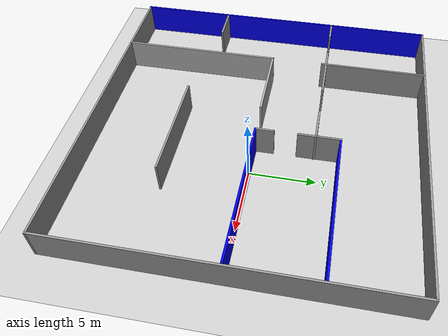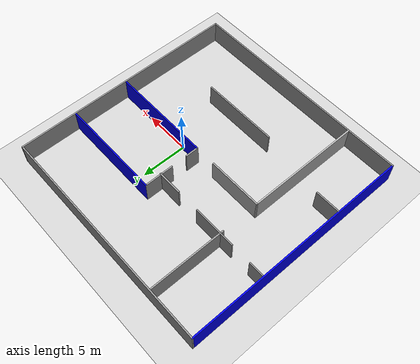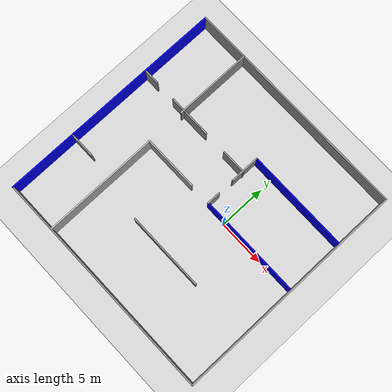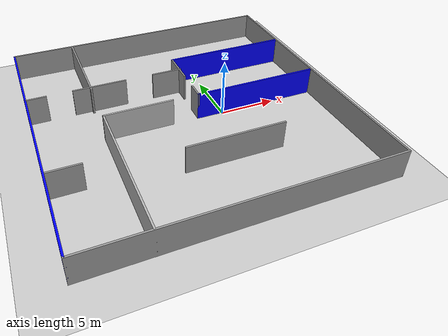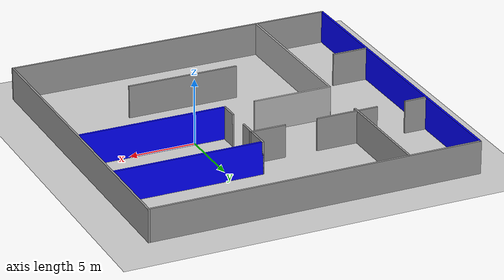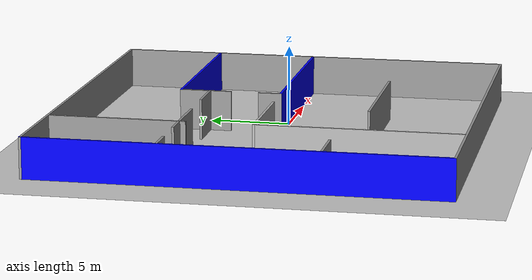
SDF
<sdf version="1.6">
 <world name="default">
  <light name="sun" type="directional">
   <pose>0 0 10 0 -0 0</pose>
   <diffuse>0.8 0.8 0.8 1</diffuse>
   <specular>0.2 0.2 0.2 1</specular>
   <attenuation>
    <range>1000</range>
    <constant>0.9</constant>
    <linear>0.01</linear>
    <quadratic>0.001</quadratic>
   </attenuation>
   <direction>-0.5 0.1 -0.9</direction>
  </light>
  <model name="ground_plane">
   <static>1</static>
   <link name="link">
    <collision name="collision">
     <geometry><plane><normal>0 0 1</normal><size>100 100</size></plane></geometry>
     <surface><friction><ode><mu>100</mu><mu2>50</mu2></ode></friction></surface>
    </collision>
    <visual name="visual">
     <cast_shadows>0</cast_shadows>
     <geometry><plane><normal>0 0 1</normal><size>100 100</size></plane></geometry>
     <material>
      <script><uri>file://media/materials/scripts/gazebo.material</uri><name>Gazebo/Grey</name></script>
     </material>
    </visual>
   </link>
  </model>
  <gravity>0 0 -9.8</gravity>
  <magnetic_field>6e-06 2.3e-05 -4.2e-05</magnetic_field>
  <atmosphere type="adiabatic"/>
  <physics name="default_physics" default="0" type="ode">
   <max_step_size>0.001</max_step_size>
   <real_time_factor>1</real_time_factor>
   <real_time_update_rate>1000</real_time_update_rate>
  </physics>
  <scene><ambient>0.4 0.4 0.4 1</ambient><background>0.7 0.7 0.7 1</background><shadows>1</shadows></scene>
  <spherical_coordinates>
   <surface_model>EARTH_WGS84</surface_model>
   <latitude_deg>0</latitude_deg>
   <longitude_deg>0</longitude_deg>
   <elevation>0</elevation>
   <heading_deg>0</heading_deg>
  </spherical_coordinates>
  <model name="bigger_building">
   <pose>-3.54596 0.090012 0 0 -0 0</pose>
   <link name="Wall_27">
    <collision name="Wall_27_Collision">
     <geometry><box><size>25.15 0.15 2.5</size></box></geometry>
     <pose>0 0 1.25 0 -0 0</pose>
    </collision>
    <visual name="Wall_27_Visual">
     <pose>0 0 1.25 0 -0 0</pose>
     <geometry><box><size>25.15 0.15 2.5</size></box></geometry>
     <material>
      <script><uri>file://media/materials/scripts/gazebo.material</uri><name>Gazebo/Grey</name></script>
      <ambient>1 1 1 1</ambient>
     </material>
     <meta><layer>0</layer></meta>
    </visual>
    <pose>0 -12.5 0 0 -0 0</pose>
   </link>
   <link name="Wall_33">
    <collision name="Wall_33_Collision">
     <geometry><box><size>25.15 0.15 2.5</size></box></geometry>
     <pose>0 0 1.25 0 -0 0</pose>
    </collision>
    <visual name="Wall_33_Visual">
     <pose>0 0 1.25 0 -0 0</pose>
     <geometry><box><size>25.15 0.15 2.5</size></box></geometry>
     <material>
      <script><uri>file://media/materials/scripts/gazebo.material</uri><name>Gazebo/Grey</name></script>
      <ambient>1 1 1 1</ambient>
     </material>
     <meta><layer>0</layer></meta>
    </visual>
    <pose>0 12.5 0 0 -0 3.14159</pose>
   </link>
   <link name="Wall_34">
    <collision name="Wall_34_Collision">
     <geometry><box><size>25.15 0.15 2.5</size></box></geometry>
     <pose>0 0 1.25 0 -0 0</pose>
    </collision>
    <visual name="Wall_34_Visual">
     <pose>0 0 1.25 0 -0 0</pose>
     <geometry><box><size>25.15 0.15 2.5</size></box></geometry>
     <material>
      <script><uri>file://media/materials/scripts/gazebo.material</uri><name>Gazebo/Grey</name></script>
      <ambient>0 0 1 1</ambient>
     </material>
     <meta><layer>0</layer></meta>
    </visual>
    <pose>-12.5 0 0 0 0 -1.5708</pose>
   </link>
   <link name="Wall_36">
    <collision name="Wall_36_Collision">
     <geometry><box><size>25.15 0.15 2.5</size></box></geometry>
     <pose>0 0 1.25 0 -0 0</pose>
    </collision>
    <visual name="Wall_36_Visual">
     <pose>0 0 1.25 0 -0 0</pose>
     <geometry><box><size>25.15 0.15 2.5</size></box></geometry>
     <material>
      <script><uri>file://media/materials/scripts/gazebo.material</uri><name>Gazebo/Grey</name></script>
      <ambient>1 1 1 1</ambient>
     </material>
     <meta><layer>0</layer></meta>
    </visual>
    <pose>12.5 0 0 0 0 -1.5708</pose>
   </link>
   <link name="Wall_40">
    <collision name="Wall_40_Collision">
     <geometry><box><size>8.5 0.15 2.5</size></box></geometry>
     <pose>0 0 1.25 0 -0 0</pose>
    </collision>
    <visual name="Wall_40_Visual">
     <pose>0 0 1.25 0 -0 0</pose>
     <geometry><box><size>8.5 0.15 2.5</size></box></geometry>
     <material>
      <script><uri>file://media/materials/scripts/gazebo.material</uri><name>Gazebo/Grey</name></script>
      <ambient>1 1 1 1</ambient>
     </material>
     <meta><layer>0</layer></meta>
    </visual>
    <pose>-7 8.325 0 0 0 -1.5708</pose>
   </link>
   <link name="Wall_42">
    <collision name="Wall_42_Collision">
     <geometry><box><size>12.65 0.15 2.5</size></box></geometry>
     <pose>0 0 1.25 0 -0 0</pose>
    </collision>
    <visual name="Wall_42_Visual">
     <pose>0 0 1.25 0 -0 0</pose>
     <geometry><box><size>12.65 0.15 2.5</size></box></geometry>
    </visual>
    <pose>-7 -6.25 0 0 0 -1.5708</pose>
   </link>
   <link name="Wall_44">
    <collision name="Wall_44_Collision">
     <geometry><box><size>2.75 0.15 2.5</size></box></geometry>
     <pose>0 0 1.25 0 -0 0</pose>
    </collision>
    <visual name="Wall_44_Visual">
     <pose>0 0 1.25 0 -0 0</pose>
     <geometry><box><size>2.75 0.15 2.5</size></box></geometry>
     <material>
      <script><uri>file://media/materials/scripts/gazebo.material</uri><name>Gazebo/Grey</name></script>
      <ambient>1 1 1 1</ambient>
     </material>
     <meta><layer>0</layer></meta>
    </visual>
    <pose>-11.119 -5 0 0 -0 0</pose>
   </link>
   <link name="Wall_51">
    <collision name="Wall_51_Collision">
     <geometry><box><size>6.04548 0.15 2.5</size></box></geometry>
     <pose>0 0 1.25 0 -0 0</pose>
    </collision>
    <visual name="Wall_51_Visual">
     <pose>0 0 1.25 0 -0 0</pose>
     <geometry><box><size>6.04548 0.15 2.5</size></box></geometry>
    </visual>
    <pose>-4.05226 0 0 0 -0 0</pose>
   </link>
   <link name="Wall_54">
    <collision name="Wall_54_Collision">
     <geometry><box><size>11.2045 0.15 2.5</size></box></geometry>
     <pose>0 0 1.25 0 -0 0</pose>
    </collision>
    <visual name="Wall_54_Visual">
     <pose>0 0 1.25 0 -0 0</pose>
     <geometry><box><size>11.2045 0.15 2.5</size></box></geometry>
     <material>
      <script><uri>file://media/materials/scripts/gazebo.material</uri><name>Gazebo/Grey</name></script>
      <ambient>0 0 1 1</ambient>
     </material>
     <meta><layer>0</layer></meta>
    </visual>
    <pose>6.77274 0 0 0 -0 0</pose>
   </link>
   <link name="Wall_56">
    <collision name="Wall_56_Collision">
     <geometry><box><size>1.5 0.15 2.5</size></box></geometry>
     <pose>0 0 1.25 0 -0 0</pose>
    </collision>
    <visual name="Wall_56_Visual">
     <pose>0 0 1.25 0 -0 0</pose>
     <geometry><box><size>1.5 0.15 2.5</size></box></geometry>
     <material>
      <script><uri>file://media/materials/scripts/gazebo.material</uri><name>Gazebo/Grey</name></script>
      <ambient>1 1 1 1</ambient>
     </material>
     <meta><layer>0</layer></meta>
    </visual>
    <pose>1.24548 0.675 0 0 -0 1.5708</pose>
   </link>
   <link name="Wall_58">
    <collision name="Wall_58_Collision">
     <geometry><box><size>3.25 0.15 2.5</size></box></geometry>
     <pose>0 0 1.25 0 -0 0</pose>
    </collision>
    <visual name="Wall_58_Visual">
     <pose>0 0 1.25 0 -0 0</pose>
     <geometry><box><size>3.25 0.15 2.5</size></box></geometry>
     <material>
      <script><uri>file://media/materials/scripts/gazebo.material</uri><name>Gazebo/Grey</name></script>
      <ambient>1 1 1 1</ambient>
     </material>
     <meta><layer>0</layer></meta>
    </visual>
    <pose>1.24548 4.75 0 0 -0 1.5708</pose>
   </link>
   <link name="Wall_59">
    <collision name="Wall_59_Collision">
     <geometry><box><size>11.25 0.15 2.5</size></box></geometry>
     <pose>0 0 1.25 0 -0 0</pose>
    </collision>
    <visual name="Wall_59_Visual">
     <pose>0 0 1.25 0 -0 0</pose>
     <geometry><box><size>11.25 0.15 2.5</size></box></geometry>
     <material>
      <script><uri>file://media/materials/scripts/gazebo.material</uri><name>Gazebo/Grey</name></script>
      <ambient>0 0 1 1</ambient>
     </material>
     <meta><layer>0</layer></meta>
    </visual>
    <pose>6.79548 6.3 0 0 -0 0</pose>
   </link>
   <link name="Wall_63">
    <collision name="Wall_63_Collision">
     <geometry><box><size>1.75 0.15 2.5</size></box></geometry>
     <pose>0 0 1.25 0 -0 0</pose>
    </collision>
    <visual name="Wall_63_Visual">
     <pose>0 0 1.25 0 -0 0</pose>
     <geometry><box><size>1.75 0.15 2.5</size></box></geometry>
     <material>
      <script><uri>file://media/materials/scripts/gazebo.material</uri><name>Gazebo/Grey</name></script>
      <ambient>1 1 1 1</ambient>
     </material>
     <meta><layer>0</layer></meta>
    </visual>
    <pose>-11.641 4.48174 0 0 -0 0</pose>
   </link>
   <link name="Wall_65">
    <collision name="Wall_65_Collision">
     <geometry><box><size>4.75 0.15 2.5</size></box></geometry>
     <pose>0 0 1.25 0 -0 0</pose>
    </collision>
    <visual name="Wall_65_Visual">
     <pose>0 0 1.25 0 -0 0</pose>
     <geometry><box><size>4.75 0.15 2.5</size></box></geometry>
     <material>
      <script><uri>file://media/materials/scripts/gazebo.material</uri><name>Gazebo/Grey</name></script>
      <ambient>1 1 1 1</ambient>
     </material>
     <meta><layer>0</layer></meta>
    </visual>
    <pose>-6.19097 4.48174 0 0 -0 0</pose>
   </link>
   <link name="Wall_67">
    <collision name="Wall_67_Collision">
     <geometry><box><size>2.75 0.15 2.5</size></box></geometry>
     <pose>0 0 1.25 0 -0 0</pose>
    </collision>
    <visual name="Wall_67_Visual">
     <pose>0 0 1.25 0 -0 0</pose>
     <geometry><box><size>2.75 0.15 2.5</size></box></geometry>
     <material>
      <script><uri>file://media/materials/scripts/gazebo.material</uri><name>Gazebo/Grey</name></script>
      <ambient>1 1 1 1</ambient>
     </material>
     <meta><layer>0</layer></meta>
    </visual>
    <pose>0.009028 4.48174 0 0 -0 0</pose>
   </link>
   <link name="Wall_70">
    <collision name="Wall_70_Collision">
     <geometry><box><size>8.5 0.15 2.5</size></box></geometry>
     <pose>0 0 1.25 0 -0 0</pose>
    </collision>
    <visual name="Wall_70_Visual">
     <pose>0 0 1.25 0 -0 0</pose>
     <geometry><box><size>8.5 0.15 2.5</size></box></geometry>
     <material>
      <script><uri>file://media/materials/scripts/gazebo.material</uri><name>Gazebo/Grey</name></script>
      <ambient>1 1 1 1</ambient>
     </material>
     <meta><layer>0</layer></meta>
    </visual>
    <pose>1.8248 -6.09003 0 0 -0 0</pose>
   </link>
   <static>1</static>
  </model>
 </world>
</sdf>
